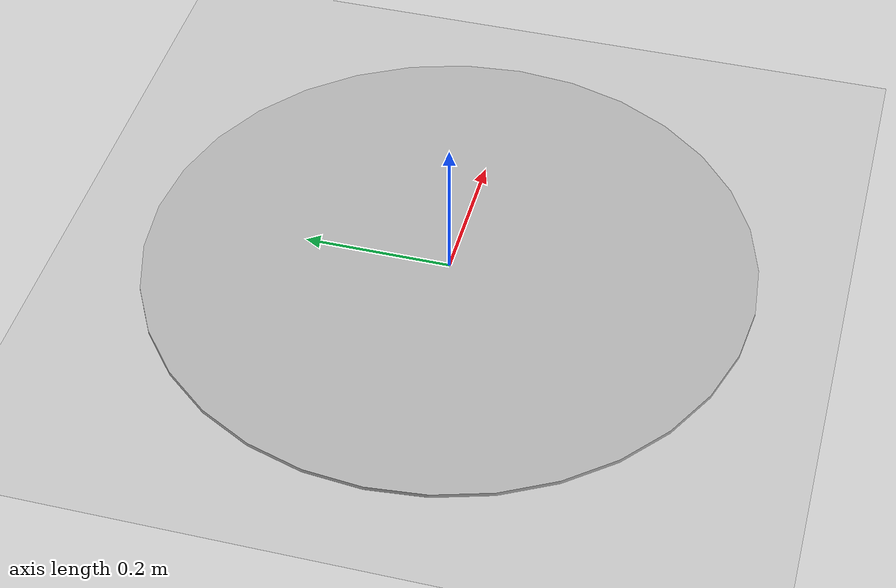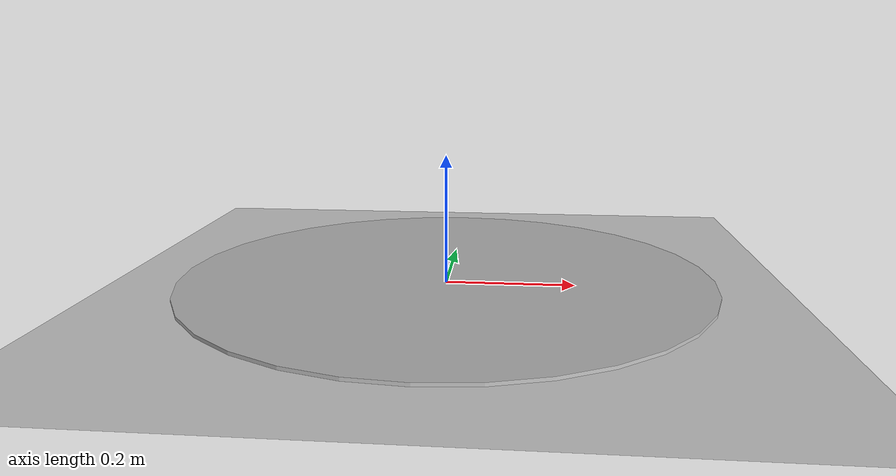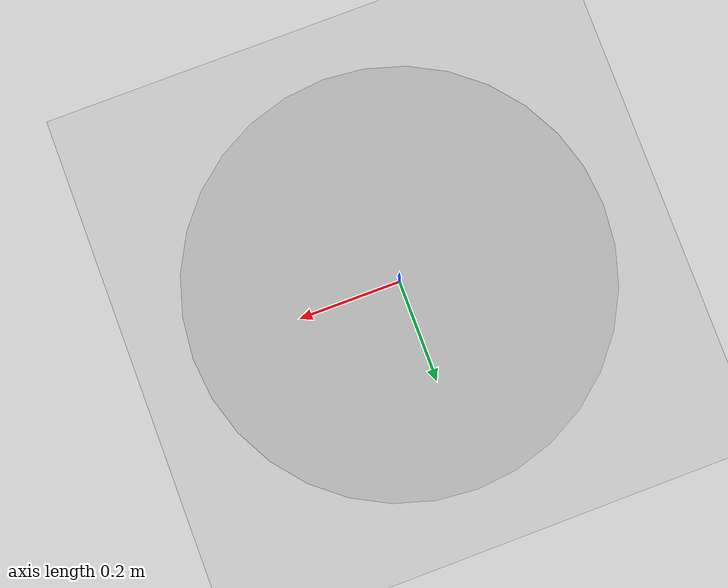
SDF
<?xml version="1.0"?>
<sdf version="1.9">
    <world name="landing_pad">
        <physics type="ode">
            <max_step_size>0.004</max_step_size>
            <real_time_factor>1.0</real_time_factor>
            <real_time_update_rate>250</real_time_update_rate>
        </physics>
        <gravity>0 0 -9.8</gravity>
        <magnetic_field>6e-06 2.3e-05 -4.2e-05</magnetic_field>
        <atmosphere type="adiabatic" />
        <scene>
            <grid>false</grid>
            <ambient>0.4 0.4 0.4 1</ambient>
            <background>0.7 0.7 0.7 1</background>
            <shadows>true</shadows>
        </scene>

        <model name="ground_plane">
            <static>true</static>
            <link name="link">
                <collision name="collision">
                    <geometry>
                        <plane>
                            <normal>0 0 1</normal>
                            <size>1 1</size>
                        </plane>
                    </geometry>
                    <surface>
                        <friction>
                            <ode />
                        </friction>
                        <bounce />
                        <contact />
                    </surface>
                </collision>
                <visual name="visual">
                    <geometry>
                        <plane>
                            <normal>0 0 1</normal>
                            <size>100 100</size>
                        </plane>
                    </geometry>
                    <material>
                        <ambient>0.8 0.8 0.8 0.5</ambient>
                        <diffuse>0.8 0.8 0.8 0.5</diffuse>
                        <specular>0.8 0.8 0.8 0.5</specular>
                    </material>
                </visual>
                <pose>0 0 0 0 -0 0</pose>
                <inertial>
                    <pose>0 0 0 0 -0 0</pose>
                    <mass>1</mass>
                    <inertia>
                        <ixx>1</ixx>
                        <ixy>0</ixy>
                        <ixz>0</ixz>
                        <iyy>1</iyy>
                        <iyz>0</iyz>
                        <izz>1</izz>
                    </inertia>
                </inertial>
                <enable_wind>false</enable_wind>
            </link>
            <pose>0 0 0 0 -0 0</pose>
            <self_collide>false</self_collide>
        </model>
        <light name="sunUTC" type="directional">
            <pose>0 0 500 0 -0 0</pose>
            <cast_shadows>true</cast_shadows>
            <intensity>1</intensity>
            <direction>0.001 0.625 -0.78</direction>
            <diffuse>0.904 0.904 0.904 1</diffuse>
            <specular>0.271 0.271 0.271 1</specular>
            <attenuation>
                <range>2000</range>
                <linear>0</linear>
                <constant>1</constant>
                <quadratic>0</quadratic>
            </attenuation>
            <spot>
                <inner_angle>0</inner_angle>
                <outer_angle>0</outer_angle>
                <falloff>0</falloff>
            </spot>
        </light>

        <include>
            <name>blueLandingPad</name>
            <uri>model://blueLandingPad</uri>
            <pose>0 0 0.01 0 0 -1.57</pose>
        </include>

        <spherical_coordinates>
            <surface_model>EARTH_WGS84</surface_model>
            <world_frame_orientation>ENU</world_frame_orientation>
            <latitude_deg>44.02762778</latitude_deg>
            <longitude_deg>-79.53671944</longitude_deg>
            <elevation>307.81</elevation>
        </spherical_coordinates>

    </world>
</sdf>

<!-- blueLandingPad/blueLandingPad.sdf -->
<sdf version='1.5'>
  <model name='blueLandingPad'>
    <static>true</static>
    <link name="link">
      <visual name="visual">
        <geometry>
          <mesh>
            <uri>model://blueLandingPad/blueLandingPad.dae</uri>
            <scale>0.505834 0.505834 0.505834</scale>
          </mesh>
        </geometry>
      </visual>

    </link>
  </model>
</sdf>
